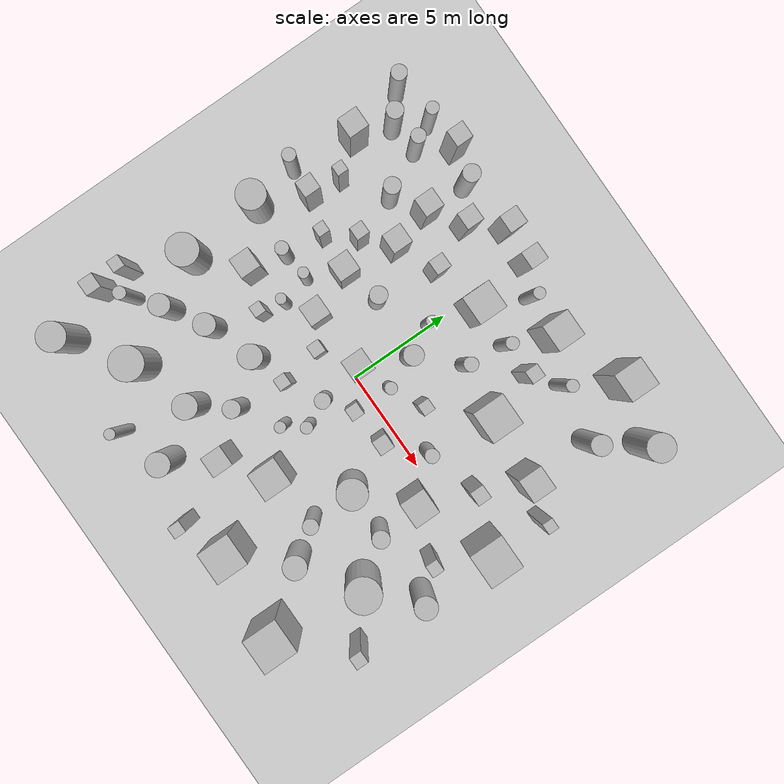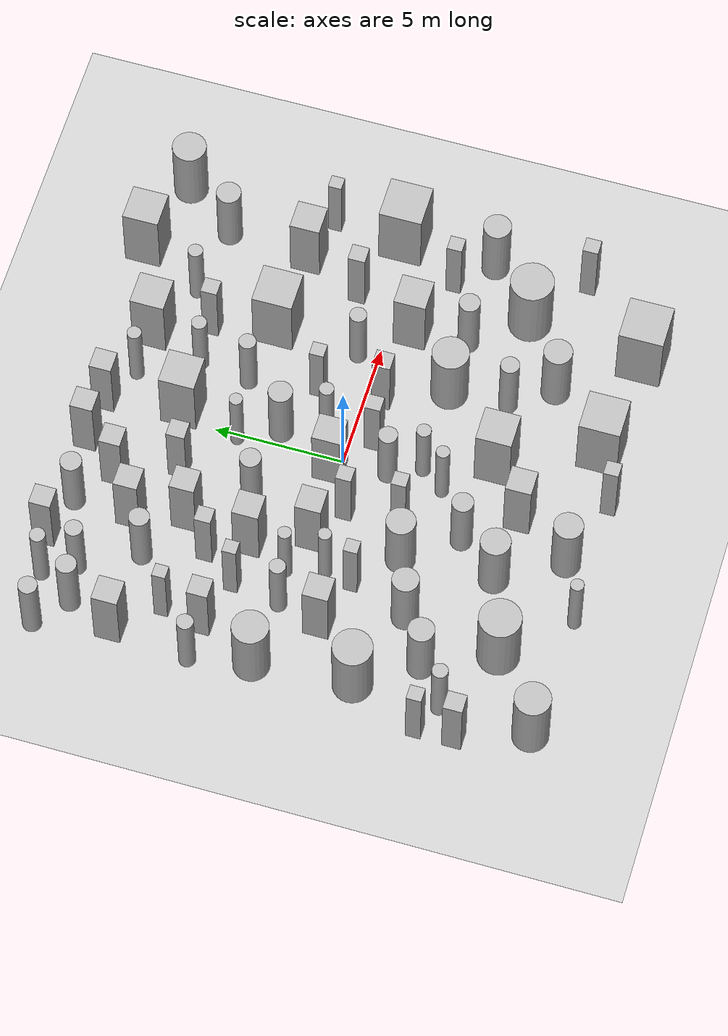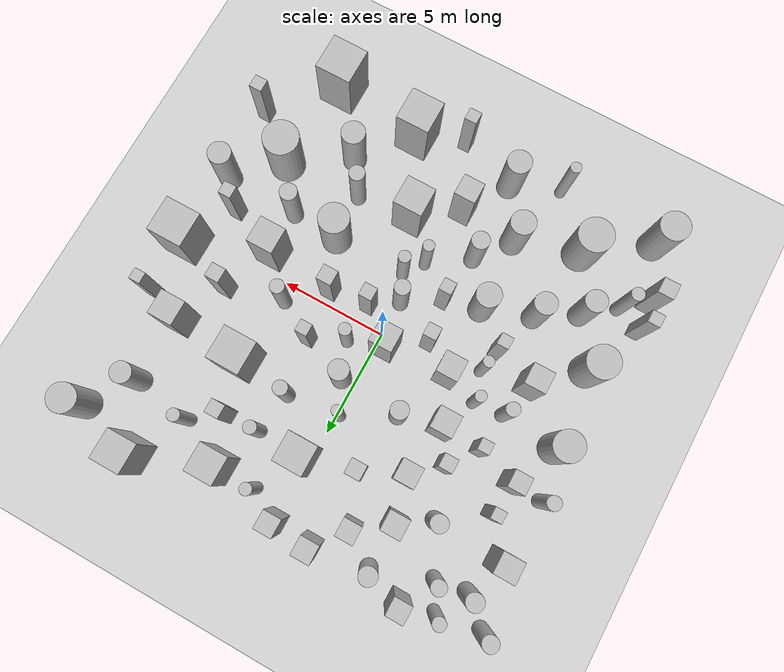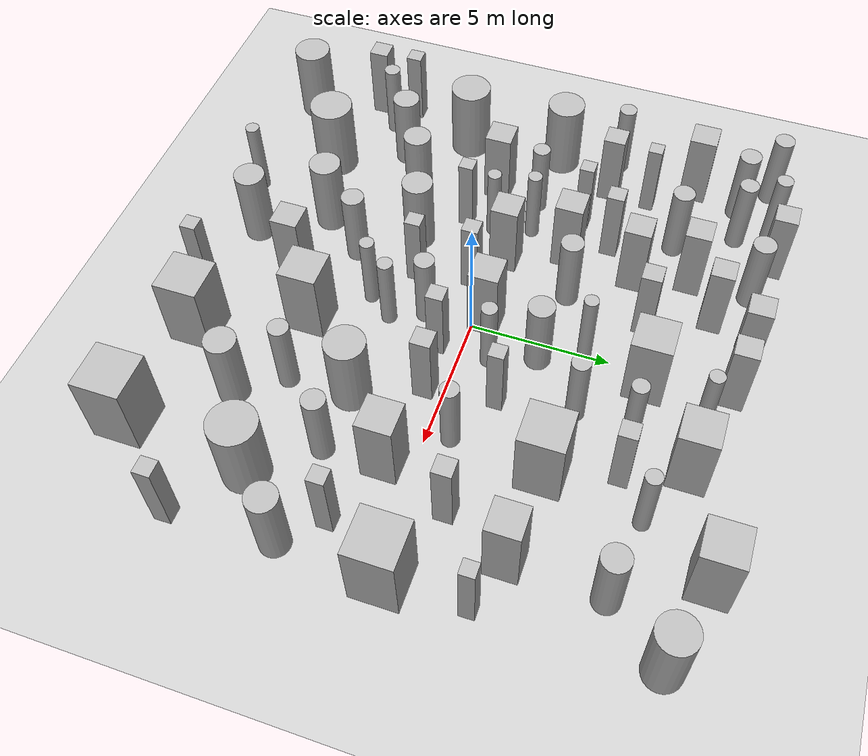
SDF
<sdf version="1.6">
        <world name="default">

        <include>
            <uri>model://ground_plane</uri>
        </include>

        <model name="obstacle_0">
            <pose>-4.238934002201111 2.3401684199355977 1.5 0 0 0</pose>
            <link name="link">
                <collision name="collision">
                    <geometry>
                        <box>
                            <size>1.0087980612089806 1.0087980612089806 3.0</size>
                        </box>
                    </geometry>
                </collision>
                <visual name="visual">
                    <geometry>
                        <box>
                            <size>1.0087980612089806 1.0087980612089806 3.0</size>
                        </box>
                    </geometry>
                </visual>
            </link>
        </model>

        <model name="obstacle_1">
            <pose>6.145270690530111 -0.9166635272459622 1.5 0 0 0</pose>
            <link name="link">
                <collision name="collision">
                    <geometry>
                        <box>
                            <size>1.2335666863201569 1.2335666863201569 3.0</size>
                        </box>
                    </geometry>
                </collision>
                <visual name="visual">
                    <geometry>
                        <box>
                            <size>1.2335666863201569 1.2335666863201569 3.0</size>
                        </box>
                    </geometry>
                </visual>
            </link>
        </model>

        <model name="obstacle_2">
            <pose>-9.017944260368713 0.811907914728538 1.5 0 0 0</pose>
            <link name="link">
                <collision name="collision">
                    <geometry>
                        <cylinder>
                            <radius>0.6912811007779129</radius>
                            <length>3.0</length>
                        </cylinder>
                    </geometry>
                </collision>
                <visual name="visual">
                    <geometry>
                        <cylinder>
                            <radius>0.6912811007779129</radius>
                            <length>3.0</length>
                        </cylinder>
                    </geometry>
                </visual>
            </link>
        </model>

        <model name="obstacle_3">
            <pose>7.834042187993031 -5.026553994182914 1.5 0 0 0</pose>
            <link name="link">
                <collision name="collision">
                    <geometry>
                        <cylinder>
                            <radius>0.8309359316589684</radius>
                            <length>3.0</length>
                        </cylinder>
                    </geometry>
                </collision>
                <visual name="visual">
                    <geometry>
                        <cylinder>
                            <radius>0.8309359316589684</radius>
                            <length>3.0</length>
                        </cylinder>
                    </geometry>
                </visual>
            </link>
        </model>

        <model name="obstacle_4">
            <pose>3.0072740224311474 -0.6460339159340105 1.5 0 0 0</pose>
            <link name="link">
                <collision name="collision">
                    <geometry>
                        <box>
                            <size>0.7022217971248751 0.7022217971248751 3.0</size>
                        </box>
                    </geometry>
                </collision>
                <visual name="visual">
                    <geometry>
                        <box>
                            <size>0.7022217971248751 0.7022217971248751 3.0</size>
                        </box>
                    </geometry>
                </visual>
            </link>
        </model>

        <model name="obstacle_5">
            <pose>3.110087922785773 -9.09727329457494 1.5 0 0 0</pose>
            <link name="link">
                <collision name="collision">
                    <geometry>
                        <box>
                            <size>1.5702536028066296 1.5702536028066296 3.0</size>
                        </box>
                    </geometry>
                </collision>
                <visual name="visual">
                    <geometry>
                        <box>
                            <size>1.5702536028066296 1.5702536028066296 3.0</size>
                        </box>
                    </geometry>
                </visual>
            </link>
        </model>

        <model name="obstacle_6">
            <pose>3.4031378238381738 8.475798860204062 1.5 0 0 0</pose>
            <link name="link">
                <collision name="collision">
                    <geometry>
                        <box>
                            <size>1.3117153214273582 1.3117153214273582 3.0</size>
                        </box>
                    </geometry>
                </collision>
                <visual name="visual">
                    <geometry>
                        <box>
                            <size>1.3117153214273582 1.3117153214273582 3.0</size>
                        </box>
                    </geometry>
                </visual>
            </link>
        </model>

        <model name="obstacle_7">
            <pose>0.5393175169344318 -2.92257386007609 1.5 0 0 0</pose>
            <link name="link">
                <collision name="collision">
                    <geometry>
                        <cylinder>
                            <radius>0.27925159162100394</radius>
                            <length>3.0</length>
                        </cylinder>
                    </geometry>
                </collision>
                <visual name="visual">
                    <geometry>
                        <cylinder>
                            <radius>0.27925159162100394</radius>
                            <length>3.0</length>
                        </cylinder>
                    </geometry>
                </visual>
            </link>
        </model>

        <model name="obstacle_8">
            <pose>-5.584718973849981 -3.9978015471559374 1.5 0 0 0</pose>
            <link name="link">
                <collision name="collision">
                    <geometry>
                        <cylinder>
                            <radius>0.5080285468940801</radius>
                            <length>3.0</length>
                        </cylinder>
                    </geometry>
                </collision>
                <visual name="visual">
                    <geometry>
                        <cylinder>
                            <radius>0.5080285468940801</radius>
                            <length>3.0</length>
                        </cylinder>
                    </geometry>
                </visual>
            </link>
        </model>

        <model name="obstacle_9">
            <pose>0.6159869571884968 2.610706594937618 1.5 0 0 0</pose>
            <link name="link">
                <collision name="collision">
                    <geometry>
                        <cylinder>
                            <radius>0.4619134839479079</radius>
                            <length>3.0</length>
                        </cylinder>
                    </geometry>
                </collision>
                <visual name="visual">
                    <geometry>
                        <cylinder>
                            <radius>0.4619134839479079</radius>
                            <length>3.0</length>
                        </cylinder>
                    </geometry>
                </visual>
            </link>
        </model>

        <model name="obstacle_10">
            <pose>-8.756086165229384 -2.9411977382442984 1.5 0 0 0</pose>
            <link name="link">
                <collision name="collision">
                    <geometry>
                        <cylinder>
                            <radius>0.7487711707294843</radius>
                            <length>3.0</length>
                        </cylinder>
                    </geometry>
                </collision>
                <visual name="visual">
                    <geometry>
                        <cylinder>
                            <radius>0.7487711707294843</radius>
                            <length>3.0</length>
                        </cylinder>
                    </geometry>
                </visual>
            </link>
        </model>

        <model name="obstacle_11">
            <pose>1.4577706665767245 -5.496408602246823 1.5 0 0 0</pose>
            <link name="link">
                <collision name="collision">
                    <geometry>
                        <box>
                            <size>1.3659984909756864 1.3659984909756864 3.0</size>
                        </box>
                    </geometry>
                </collision>
                <visual name="visual">
                    <geometry>
                        <box>
                            <size>1.3659984909756864 1.3659984909756864 3.0</size>
                        </box>
                    </geometry>
                </visual>
            </link>
        </model>

        <model name="obstacle_12">
            <pose>7.346382181564493 -9.570906018380601 1.5 0 0 0</pose>
            <link name="link">
                <collision name="collision">
                    <geometry>
                        <box>
                            <size>1.7083053139215685 1.7083053139215685 3.0</size>
                        </box>
                    </geometry>
                </collision>
                <visual name="visual">
                    <geometry>
                        <box>
                            <size>1.7083053139215685 1.7083053139215685 3.0</size>
                        </box>
                    </geometry>
                </visual>
            </link>
        </model>

        <model name="obstacle_13">
            <pose>-3.8884177708250984 4.878317284280859 1.5 0 0 0</pose>
            <link name="link">
                <collision name="collision">
                    <geometry>
                        <box>
                            <size>0.9458271644123053 0.9458271644123053 3.0</size>
                        </box>
                    </geometry>
                </collision>
                <visual name="visual">
                    <geometry>
                        <box>
                            <size>0.9458271644123053 0.9458271644123053 3.0</size>
                        </box>
                    </geometry>
                </visual>
            </link>
        </model>

        <model name="obstacle_14">
            <pose>-2.8738903435812553 7.9924809726205694 1.5 0 0 0</pose>
            <link name="link">
                <collision name="collision">
                    <geometry>
                        <box>
                            <size>0.8247701336814386 0.8247701336814386 3.0</size>
                        </box>
                    </geometry>
                </collision>
                <visual name="visual">
                    <geometry>
                        <box>
                            <size>0.8247701336814386 0.8247701336814386 3.0</size>
                        </box>
                    </geometry>
                </visual>
            </link>
        </model>

        <model name="obstacle_15">
            <pose>-2.0000379605591734 -0.6655131190047676 1.5 0 0 0</pose>
            <link name="link">
                <collision name="collision">
                    <geometry>
                        <box>
                            <size>0.6038479094198892 0.6038479094198892 3.0</size>
                        </box>
                    </geometry>
                </collision>
                <visual name="visual">
                    <geometry>
                        <box>
                            <size>0.6038479094198892 0.6038479094198892 3.0</size>
                        </box>
                    </geometry>
                </visual>
            </link>
        </model>

        <model name="obstacle_16">
            <pose>-3.169490662841012 -6.691649750913607 1.5 0 0 0</pose>
            <link name="link">
                <collision name="collision">
                    <geometry>
                        <cylinder>
                            <radius>0.5721713468013232</radius>
                            <length>3.0</length>
                        </cylinder>
                    </geometry>
                </collision>
                <visual name="visual">
                    <geometry>
                        <cylinder>
                            <radius>0.5721713468013232</radius>
                            <length>3.0</length>
                        </cylinder>
                    </geometry>
                </visual>
            </link>
        </model>

        <model name="obstacle_17">
            <pose>-2.363137781308775 2.8474199668211746 1.5 0 0 0</pose>
            <link name="link">
                <collision name="collision">
                    <geometry>
                        <cylinder>
                            <radius>0.4059845828894272</radius>
                            <length>3.0</length>
                        </cylinder>
                    </geometry>
                </collision>
                <visual name="visual">
                    <geometry>
                        <cylinder>
                            <radius>0.4059845828894272</radius>
                            <length>3.0</length>
                        </cylinder>
                    </geometry>
                </visual>
            </link>
        </model>

        <model name="obstacle_18">
            <pose>-1.7892718869816129 -9.057475648870636 1.5 0 0 0</pose>
            <link name="link">
                <collision name="collision">
                    <geometry>
                        <cylinder>
                            <radius>0.5564256677063096</radius>
                            <length>3.0</length>
                        </cylinder>
                    </geometry>
                </collision>
                <visual name="visual">
                    <geometry>
                        <cylinder>
                            <radius>0.5564256677063096</radius>
                            <length>3.0</length>
                        </cylinder>
                    </geometry>
                </visual>
            </link>
        </model>

        <model name="obstacle_19">
            <pose>8.178335750158915 3.797907536463324 1.5 0 0 0</pose>
            <link name="link">
                <collision name="collision">
                    <geometry>
                        <box>
                            <size>1.1548980339137929 1.1548980339137929 3.0</size>
                        </box>
                    </geometry>
                </collision>
                <visual name="visual">
                    <geometry>
                        <box>
                            <size>1.1548980339137929 1.1548980339137929 3.0</size>
                        </box>
                    </geometry>
                </visual>
            </link>
        </model>

        <model name="obstacle_20">
            <pose>-6.758674062038812 -1.074526064640363 1.5 0 0 0</pose>
            <link name="link">
                <collision name="collision">
                    <geometry>
                        <box>
                            <size>0.9747178775005267 0.9747178775005267 3.0</size>
                        </box>
                    </geometry>
                </collision>
                <visual name="visual">
                    <geometry>
                        <box>
                            <size>0.9747178775005267 0.9747178775005267 3.0</size>
                        </box>
                    </geometry>
                </visual>
            </link>
        </model>

        <model name="obstacle_21">
            <pose>4.898723037215348 4.026947524572698 1.5 0 0 0</pose>
            <link name="link">
                <collision name="collision">
                    <geometry>
                        <box>
                            <size>1.5508890398871842 1.5508890398871842 3.0</size>
                        </box>
                    </geometry>
                </collision>
                <visual name="visual">
                    <geometry>
                        <box>
                            <size>1.5508890398871842 1.5508890398871842 3.0</size>
                        </box>
                    </geometry>
                </visual>
            </link>
        </model>

        <model name="obstacle_22">
            <pose>-7.621642402214053 9.308360834782235 1.5 0 0 0</pose>
            <link name="link">
                <collision name="collision">
                    <geometry>
                        <cylinder>
                            <radius>0.2959138246513062</radius>
                            <length>3.0</length>
                        </cylinder>
                    </geometry>
                </collision>
                <visual name="visual">
                    <geometry>
                        <cylinder>
                            <radius>0.2959138246513062</radius>
                            <length>3.0</length>
                        </cylinder>
                    </geometry>
                </visual>
            </link>
        </model>

        <model name="obstacle_23">
            <pose>-9.048041047818934 6.164099806317761 1.5 0 0 0</pose>
            <link name="link">
                <collision name="collision">
                    <geometry>
                        <box>
                            <size>0.9823736218656329 0.9823736218656329 3.0</size>
                        </box>
                    </geometry>
                </collision>
                <visual name="visual">
                    <geometry>
                        <box>
                            <size>0.9823736218656329 0.9823736218656329 3.0</size>
                        </box>
                    </geometry>
                </visual>
            </link>
        </model>

        <model name="obstacle_24">
            <pose>0.48835525379342926 6.392519355539697 1.5 0 0 0</pose>
            <link name="link">
                <collision name="collision">
                    <geometry>
                        <box>
                            <size>1.3798679143360395 1.3798679143360395 3.0</size>
                        </box>
                    </geometry>
                </collision>
                <visual name="visual">
                    <geometry>
                        <box>
                            <size>1.3798679143360395 1.3798679143360395 3.0</size>
                        </box>
                    </geometry>
                </visual>
            </link>
        </model>

        <model name="obstacle_25">
            <pose>3.999876859168916 -2.9528975664922648 1.5 0 0 0</pose>
            <link name="link">
                <collision name="collision">
                    <geometry>
                        <cylinder>
                            <radius>0.7056553802129936</radius>
                            <length>3.0</length>
                        </cylinder>
                    </geometry>
                </collision>
                <visual name="visual">
                    <geometry>
                        <cylinder>
                            <radius>0.7056553802129936</radius>
                            <length>3.0</length>
                        </cylinder>
                    </geometry>
                </visual>
            </link>
        </model>

        <model name="obstacle_26">
            <pose>-8.897895715348856 -9.675132015035015 1.5 0 0 0</pose>
            <link name="link">
                <collision name="collision">
                    <geometry>
                        <cylinder>
                            <radius>0.6800447778445939</radius>
                            <length>3.0</length>
                        </cylinder>
                    </geometry>
                </collision>
                <visual name="visual">
                    <geometry>
                        <cylinder>
                            <radius>0.6800447778445939</radius>
                            <length>3.0</length>
                        </cylinder>
                    </geometry>
                </visual>
            </link>
        </model>

        <model name="obstacle_27">
            <pose>1.2200160081743157 1.0119621247316317 1.5 0 0 0</pose>
            <link name="link">
                <collision name="collision">
                    <geometry>
                        <cylinder>
                            <radius>0.282514639175391</radius>
                            <length>3.0</length>
                        </cylinder>
                    </geometry>
                </collision>
                <visual name="visual">
                    <geometry>
                        <cylinder>
                            <radius>0.282514639175391</radius>
                            <length>3.0</length>
                        </cylinder>
                    </geometry>
                </visual>
            </link>
        </model>

        <model name="obstacle_28">
            <pose>-1.6626085759479956 -2.663867658165122 1.5 0 0 0</pose>
            <link name="link">
                <collision name="collision">
                    <geometry>
                        <box>
                            <size>0.5749653239591102 0.5749653239591102 3.0</size>
                        </box>
                    </geometry>
                </collision>
                <visual name="visual">
                    <geometry>
                        <box>
                            <size>0.5749653239591102 0.5749653239591102 3.0</size>
                        </box>
                    </geometry>
                </visual>
            </link>
        </model>

        <model name="obstacle_29">
            <pose>-6.119675531651456 -7.694540272593504 1.5 0 0 0</pose>
            <link name="link">
                <collision name="collision">
                    <geometry>
                        <cylinder>
                            <radius>0.7970464736753787</radius>
                            <length>3.0</length>
                        </cylinder>
                    </geometry>
                </collision>
                <visual name="visual">
                    <geometry>
                        <cylinder>
                            <radius>0.7970464736753787</radius>
                            <length>3.0</length>
                        </cylinder>
                    </geometry>
                </visual>
            </link>
        </model>

        <model name="obstacle_30">
            <pose>-4.8224930908618635 -1.7589879626371818 1.5 0 0 0</pose>
            <link name="link">
                <collision name="collision">
                    <geometry>
                        <box>
                            <size>0.5395689248854418 0.5395689248854418 3.0</size>
                        </box>
                    </geometry>
                </collision>
                <visual name="visual">
                    <geometry>
                        <box>
                            <size>0.5395689248854418 0.5395689248854418 3.0</size>
                        </box>
                    </geometry>
                </visual>
            </link>
        </model>

        <model name="obstacle_31">
            <pose>9.896015477448927 0.47715031232028515 1.5 0 0 0</pose>
            <link name="link">
                <collision name="collision">
                    <geometry>
                        <box>
                            <size>1.6586154198489997 1.6586154198489997 3.0</size>
                        </box>
                    </geometry>
                </collision>
                <visual name="visual">
                    <geometry>
                        <box>
                            <size>1.6586154198489997 1.6586154198489997 3.0</size>
                        </box>
                    </geometry>
                </visual>
            </link>
        </model>

        <model name="obstacle_32">
            <pose>8.369306418920086 7.010070913804384 1.5 0 0 0</pose>
            <link name="link">
                <collision name="collision">
                    <geometry>
                        <cylinder>
                            <radius>0.47489638489931907</radius>
                            <length>3.0</length>
                        </cylinder>
                    </geometry>
                </collision>
                <visual name="visual">
                    <geometry>
                        <cylinder>
                            <radius>0.47489638489931907</radius>
                            <length>3.0</length>
                        </cylinder>
                    </geometry>
                </visual>
            </link>
        </model>

        <model name="obstacle_33">
            <pose>0.06482576601763412 9.294009579444406 1.5 0 0 0</pose>
            <link name="link">
                <collision name="collision">
                    <geometry>
                        <box>
                            <size>0.8416628205242092 0.8416628205242092 3.0</size>
                        </box>
                    </geometry>
                </collision>
                <visual name="visual">
                    <geometry>
                        <box>
                            <size>0.8416628205242092 0.8416628205242092 3.0</size>
                        </box>
                    </geometry>
                </visual>
            </link>
        </model>

        <model name="obstacle_34">
            <pose>6.9144650538570005 9.841627672287554 1.5 0 0 0</pose>
            <link name="link">
                <collision name="collision">
                    <geometry>
                        <box>
                            <size>1.3882798679516937 1.3882798679516937 3.0</size>
                        </box>
                    </geometry>
                </collision>
                <visual name="visual">
                    <geometry>
                        <box>
                            <size>1.3882798679516937 1.3882798679516937 3.0</size>
                        </box>
                    </geometry>
                </visual>
            </link>
        </model>

        <model name="obstacle_35">
            <pose>-0.4606294836279705 -6.918262773111459 1.5 0 0 0</pose>
            <link name="link">
                <collision name="collision">
                    <geometry>
                        <box>
                            <size>0.9922067555000481 0.9922067555000481 3.0</size>
                        </box>
                    </geometry>
                </collision>
                <visual name="visual">
                    <geometry>
                        <box>
                            <size>0.9922067555000481 0.9922067555000481 3.0</size>
                        </box>
                    </geometry>
                </visual>
            </link>
        </model>

        <model name="obstacle_36">
            <pose>4.2291705142799465 6.420156540178233 1.5 0 0 0</pose>
            <link name="link">
                <collision name="collision">
                    <geometry>
                        <box>
                            <size>0.6316317843230939 0.6316317843230939 3.0</size>
                        </box>
                    </geometry>
                </collision>
                <visual name="visual">
                    <geometry>
                        <box>
                            <size>0.6316317843230939 0.6316317843230939 3.0</size>
                        </box>
                    </geometry>
                </visual>
            </link>
        </model>

        <model name="obstacle_37">
            <pose>-0.3860492762994223 0.4143770627543262 1.5 0 0 0</pose>
            <link name="link">
                <collision name="collision">
                    <geometry>
                        <box>
                            <size>1.0807816774041639 1.0807816774041639 3.0</size>
                        </box>
                    </geometry>
                </collision>
                <visual name="visual">
                    <geometry>
                        <box>
                            <size>1.0807816774041639 1.0807816774041639 3.0</size>
                        </box>
                    </geometry>
                </visual>
            </link>
        </model>

        <model name="obstacle_38">
            <pose>8.620760198827465 -1.8543167101960414 1.5 0 0 0</pose>
            <link name="link">
                <collision name="collision">
                    <geometry>
                        <box>
                            <size>0.5861407225004986 0.5861407225004986 3.0</size>
                        </box>
                    </geometry>
                </collision>
                <visual name="visual">
                    <geometry>
                        <box>
                            <size>0.5861407225004986 0.5861407225004986 3.0</size>
                        </box>
                    </geometry>
                </visual>
            </link>
        </model>

        <model name="obstacle_39">
            <pose>-4.377239285824661 6.890563592942701 1.5 0 0 0</pose>
            <link name="link">
                <collision name="collision">
                    <geometry>
                        <box>
                            <size>0.9197718986840724 0.9197718986840724 3.0</size>
                        </box>
                    </geometry>
                </collision>
                <visual name="visual">
                    <geometry>
                        <box>
                            <size>0.9197718986840724 0.9197718986840724 3.0</size>
                        </box>
                    </geometry>
                </visual>
            </link>
        </model>

        <model name="obstacle_40">
            <pose>-9.80193452816938 -7.057811011087476 1.5 0 0 0</pose>
            <link name="link">
                <collision name="collision">
                    <geometry>
                        <box>
                            <size>0.7237780360346685 0.7237780360346685 3.0</size>
                        </box>
                    </geometry>
                </collision>
                <visual name="visual">
                    <geometry>
                        <box>
                            <size>0.7237780360346685 0.7237780360346685 3.0</size>
                        </box>
                    </geometry>
                </visual>
            </link>
        </model>

        <model name="obstacle_41">
            <pose>-7.771650174179456 4.585857764717103 1.5 0 0 0</pose>
            <link name="link">
                <collision name="collision">
                    <geometry>
                        <box>
                            <size>0.5167108467523268 0.5167108467523268 3.0</size>
                        </box>
                    </geometry>
                </collision>
                <visual name="visual">
                    <geometry>
                        <box>
                            <size>0.5167108467523268 0.5167108467523268 3.0</size>
                        </box>
                    </geometry>
                </visual>
            </link>
        </model>

        <model name="obstacle_42">
            <pose>-6.9836851603014 8.138524600085706 1.5 0 0 0</pose>
            <link name="link">
                <collision name="collision">
                    <geometry>
                        <cylinder>
                            <radius>0.34058760315817826</radius>
                            <length>3.0</length>
                        </cylinder>
                    </geometry>
                </collision>
                <visual name="visual">
                    <geometry>
                        <cylinder>
                            <radius>0.34058760315817826</radius>
                            <length>3.0</length>
                        </cylinder>
                    </geometry>
                </visual>
            </link>
        </model>

        <model name="obstacle_43">
            <pose>9.985417119038988 -6.764585476006233 1.5 0 0 0</pose>
            <link name="link">
                <collision name="collision">
                    <geometry>
                        <box>
                            <size>0.5969253716105238 0.5969253716105238 3.0</size>
                        </box>
                    </geometry>
                </collision>
                <visual name="visual">
                    <geometry>
                        <box>
                            <size>0.5969253716105238 0.5969253716105238 3.0</size>
                        </box>
                    </geometry>
                </visual>
            </link>
        </model>

        <model name="obstacle_44">
            <pose>4.1208838282255495 -5.2022096401330264 1.5 0 0 0</pose>
            <link name="link">
                <collision name="collision">
                    <geometry>
                        <cylinder>
                            <radius>0.36009193347507934</radius>
                            <length>3.0</length>
                        </cylinder>
                    </geometry>
                </collision>
                <visual name="visual">
                    <geometry>
                        <cylinder>
                            <radius>0.36009193347507934</radius>
                            <length>3.0</length>
                        </cylinder>
                    </geometry>
                </visual>
            </link>
        </model>

        <model name="obstacle_45">
            <pose>-0.14785550797803815 4.090784782804384 1.5 0 0 0</pose>
            <link name="link">
                <collision name="collision">
                    <geometry>
                        <cylinder>
                            <radius>0.2531381217249855</radius>
                            <length>3.0</length>
                        </cylinder>
                    </geometry>
                </collision>
                <visual name="visual">
                    <geometry>
                        <cylinder>
                            <radius>0.2531381217249855</radius>
                            <length>3.0</length>
                        </cylinder>
                    </geometry>
                </visual>
            </link>
        </model>

        <model name="obstacle_46">
            <pose>-9.678910666382999 8.997330428784913 1.5 0 0 0</pose>
            <link name="link">
                <collision name="collision">
                    <geometry>
                        <cylinder>
                            <radius>0.362171117171875</radius>
                            <length>3.0</length>
                        </cylinder>
                    </geometry>
                </collision>
                <visual name="visual">
                    <geometry>
                        <cylinder>
                            <radius>0.362171117171875</radius>
                            <length>3.0</length>
                        </cylinder>
                    </geometry>
                </visual>
            </link>
        </model>

        <model name="obstacle_47">
            <pose>-6.094148292588784 2.442420619964526 1.5 0 0 0</pose>
            <link name="link">
                <collision name="collision">
                    <geometry>
                        <box>
                            <size>0.5346944205373667 0.5346944205373667 3.0</size>
                        </box>
                    </geometry>
                </collision>
                <visual name="visual">
                    <geometry>
                        <box>
                            <size>0.5346944205373667 0.5346944205373667 3.0</size>
                        </box>
                    </geometry>
                </visual>
            </link>
        </model>

        <model name="obstacle_48">
            <pose>9.914213858505953 9.054127102292252 1.5 0 0 0</pose>
            <link name="link">
                <collision name="collision">
                    <geometry>
                        <cylinder>
                            <radius>0.6557222812279042</radius>
                            <length>3.0</length>
                        </cylinder>
                    </geometry>
                </collision>
                <visual name="visual">
                    <geometry>
                        <cylinder>
                            <radius>0.6557222812279042</radius>
                            <length>3.0</length>
                        </cylinder>
                    </geometry>
                </visual>
            </link>
        </model>

        <model name="obstacle_49">
            <pose>-3.3764061567256682 0.21683452515700807 1.5 0 0 0</pose>
            <link name="link">
                <collision name="collision">
                    <geometry>
                        <box>
                            <size>0.9927370216790601 0.9927370216790601 3.0</size>
                        </box>
                    </geometry>
                </collision>
                <visual name="visual">
                    <geometry>
                        <box>
                            <size>0.9927370216790601 0.9927370216790601 3.0</size>
                        </box>
                    </geometry>
                </visual>
            </link>
        </model>

        <model name="obstacle_50">
            <pose>4.601844883433074 0.7970752207997567 1.5 0 0 0</pose>
            <link name="link">
                <collision name="collision">
                    <geometry>
                        <cylinder>
                            <radius>0.3268638710699123</radius>
                            <length>3.0</length>
                        </cylinder>
                    </geometry>
                </collision>
                <visual name="visual">
                    <geometry>
                        <cylinder>
                            <radius>0.3268638710699123</radius>
                            <length>3.0</length>
                        </cylinder>
                    </geometry>
                </visual>
            </link>
        </model>

        <model name="obstacle_51">
            <pose>-7.952528367623433 3.0360502876566997 1.5 0 0 0</pose>
            <link name="link">
                <collision name="collision">
                    <geometry>
                        <box>
                            <size>0.7895626273553267 0.7895626273553267 3.0</size>
                        </box>
                    </geometry>
                </collision>
                <visual name="visual">
                    <geometry>
                        <box>
                            <size>0.7895626273553267 0.7895626273553267 3.0</size>
                        </box>
                    </geometry>
                </visual>
            </link>
        </model>

        <model name="obstacle_52">
            <pose>-4.988464594915811 0.7486405653123551 1.5 0 0 0</pose>
            <link name="link">
                <collision name="collision">
                    <geometry>
                        <cylinder>
                            <radius>0.2573533472284216</radius>
                            <length>3.0</length>
                        </cylinder>
                    </geometry>
                </collision>
                <visual name="visual">
                    <geometry>
                        <cylinder>
                            <radius>0.2573533472284216</radius>
                            <length>3.0</length>
                        </cylinder>
                    </geometry>
                </visual>
            </link>
        </model>

        <model name="obstacle_53">
            <pose>-5.096687789966676 3.753137621852023 1.5 0 0 0</pose>
            <link name="link">
                <collision name="collision">
                    <geometry>
                        <box>
                            <size>0.626570313841347 0.626570313841347 3.0</size>
                        </box>
                    </geometry>
                </collision>
                <visual name="visual">
                    <geometry>
                        <box>
                            <size>0.626570313841347 0.626570313841347 3.0</size>
                        </box>
                    </geometry>
                </visual>
            </link>
        </model>

        <model name="obstacle_54">
            <pose>7.173594746633508 1.5397271646103299 1.5 0 0 0</pose>
            <link name="link">
                <collision name="collision">
                    <geometry>
                        <box>
                            <size>0.6645214422690804 0.6645214422690804 3.0</size>
                        </box>
                    </geometry>
                </collision>
                <visual name="visual">
                    <geometry>
                        <box>
                            <size>0.6645214422690804 0.6645214422690804 3.0</size>
                        </box>
                    </geometry>
                </visual>
            </link>
        </model>

        <model name="obstacle_55">
            <pose>-9.885926594384664 -5.624149534148111 1.5 0 0 0</pose>
            <link name="link">
                <collision name="collision">
                    <geometry>
                        <box>
                            <size>0.5677287679731353 0.5677287679731353 3.0</size>
                        </box>
                    </geometry>
                </collision>
                <visual name="visual">
                    <geometry>
                        <box>
                            <size>0.5677287679731353 0.5677287679731353 3.0</size>
                        </box>
                    </geometry>
                </visual>
            </link>
        </model>

        <model name="obstacle_56">
            <pose>-4.03528217945879 -9.99484287208438 1.5 0 0 0</pose>
            <link name="link">
                <collision name="collision">
                    <geometry>
                        <cylinder>
                            <radius>0.25428051481978264</radius>
                            <length>3.0</length>
                        </cylinder>
                    </geometry>
                </collision>
                <visual name="visual">
                    <geometry>
                        <cylinder>
                            <radius>0.25428051481978264</radius>
                            <length>3.0</length>
                        </cylinder>
                    </geometry>
                </visual>
            </link>
        </model>

        <model name="obstacle_57">
            <pose>-3.337183344416415 -3.173449474668402 1.5 0 0 0</pose>
            <link name="link">
                <collision name="collision">
                    <geometry>
                        <cylinder>
                            <radius>0.5612728351840388</radius>
                            <length>3.0</length>
                        </cylinder>
                    </geometry>
                </collision>
                <visual name="visual">
                    <geometry>
                        <cylinder>
                            <radius>0.5612728351840388</radius>
                            <length>3.0</length>
                        </cylinder>
                    </geometry>
                </visual>
            </link>
        </model>

        <model name="obstacle_58">
            <pose>-6.033630556739205 9.637501441095242 1.5 0 0 0</pose>
            <link name="link">
                <collision name="collision">
                    <geometry>
                        <box>
                            <size>0.8155261559931428 0.8155261559931428 3.0</size>
                        </box>
                    </geometry>
                </collision>
                <visual name="visual">
                    <geometry>
                        <box>
                            <size>0.8155261559931428 0.8155261559931428 3.0</size>
                        </box>
                    </geometry>
                </visual>
            </link>
        </model>

        <model name="obstacle_59">
            <pose>2.335078378590419 4.407985073086753 1.5 0 0 0</pose>
            <link name="link">
                <collision name="collision">
                    <geometry>
                        <cylinder>
                            <radius>0.33004601818887286</radius>
                            <length>3.0</length>
                        </cylinder>
                    </geometry>
                </collision>
                <visual name="visual">
                    <geometry>
                        <cylinder>
                            <radius>0.33004601818887286</radius>
                            <length>3.0</length>
                        </cylinder>
                    </geometry>
                </visual>
            </link>
        </model>

        <model name="obstacle_60">
            <pose>5.177041149628659 -6.757302660997803 1.5 0 0 0</pose>
            <link name="link">
                <collision name="collision">
                    <geometry>
                        <cylinder>
                            <radius>0.5488387679076501</radius>
                            <length>3.0</length>
                        </cylinder>
                    </geometry>
                </collision>
                <visual name="visual">
                    <geometry>
                        <cylinder>
                            <radius>0.5488387679076501</radius>
                            <length>3.0</length>
                        </cylinder>
                    </geometry>
                </visual>
            </link>
        </model>

        <model name="obstacle_61">
            <pose>-4.3705570139700445 9.098607364951143 1.5 0 0 0</pose>
            <link name="link">
                <collision name="collision">
                    <geometry>
                        <cylinder>
                            <radius>0.40827100175758924</radius>
                            <length>3.0</length>
                        </cylinder>
                    </geometry>
                </collision>
                <visual name="visual">
                    <geometry>
                        <cylinder>
                            <radius>0.40827100175758924</radius>
                            <length>3.0</length>
                        </cylinder>
                    </geometry>
                </visual>
            </link>
        </model>

        <model name="obstacle_62">
            <pose>-7.37821343280925 -5.1045693653181985 1.5 0 0 0</pose>
            <link name="link">
                <collision name="collision">
                    <geometry>
                        <cylinder>
                            <radius>0.4980980216324874</radius>
                            <length>3.0</length>
                        </cylinder>
                    </geometry>
                </collision>
                <visual name="visual">
                    <geometry>
                        <cylinder>
                            <radius>0.4980980216324874</radius>
                            <length>3.0</length>
                        </cylinder>
                    </geometry>
                </visual>
            </link>
        </model>

        <model name="obstacle_63">
            <pose>-5.8726311441572365 6.000759375129377 1.5 0 0 0</pose>
            <link name="link">
                <collision name="collision">
                    <geometry>
                        <cylinder>
                            <radius>0.3897664748409879</radius>
                            <length>3.0</length>
                        </cylinder>
                    </geometry>
                </collision>
                <visual name="visual">
                    <geometry>
                        <cylinder>
                            <radius>0.3897664748409879</radius>
                            <length>3.0</length>
                        </cylinder>
                    </geometry>
                </visual>
            </link>
        </model>

        <model name="obstacle_64">
            <pose>2.600446677377356 6.371294402779149 1.5 0 0 0</pose>
            <link name="link">
                <collision name="collision">
                    <geometry>
                        <cylinder>
                            <radius>0.2954574464455786</radius>
                            <length>3.0</length>
                        </cylinder>
                    </geometry>
                </collision>
                <visual name="visual">
                    <geometry>
                        <cylinder>
                            <radius>0.2954574464455786</radius>
                            <length>3.0</length>
                        </cylinder>
                    </geometry>
                </visual>
            </link>
        </model>

        <model name="obstacle_65">
            <pose>9.805555304609442 -3.1250324270393515 1.5 0 0 0</pose>
            <link name="link">
                <collision name="collision">
                    <geometry>
                        <cylinder>
                            <radius>0.5319538246331648</radius>
                            <length>3.0</length>
                        </cylinder>
                    </geometry>
                </collision>
                <visual name="visual">
                    <geometry>
                        <cylinder>
                            <radius>0.5319538246331648</radius>
                            <length>3.0</length>
                        </cylinder>
                    </geometry>
                </visual>
            </link>
        </model>

        <model name="obstacle_66">
            <pose>-9.480850672791432 3.1145563961223885 1.5 0 0 0</pose>
            <link name="link">
                <collision name="collision">
                    <geometry>
                        <cylinder>
                            <radius>0.3172951371973239</radius>
                            <length>3.0</length>
                        </cylinder>
                    </geometry>
                </collision>
                <visual name="visual">
                    <geometry>
                        <cylinder>
                            <radius>0.3172951371973239</radius>
                            <length>3.0</length>
                        </cylinder>
                    </geometry>
                </visual>
            </link>
        </model>

        <model name="obstacle_68">
            <pose>1.1549652827275825 -0.8486314752223052 1.5 0 0 0</pose>
            <link name="link">
                <collision name="collision">
                    <geometry>
                        <box>
                            <size>0.608642747766415 0.608642747766415 3.0</size>
                        </box>
                    </geometry>
                </collision>
                <visual name="visual">
                    <geometry>
                        <box>
                            <size>0.608642747766415 0.608642747766415 3.0</size>
                        </box>
                    </geometry>
                </visual>
            </link>
        </model>

        <model name="obstacle_69">
            <pose>-1.9447252157539001 -5.108007378613917 1.5 0 0 0</pose>
            <link name="link">
                <collision name="collision">
                    <geometry>
                        <cylinder>
                            <radius>0.40991495829740626</radius>
                            <length>3.0</length>
                        </cylinder>
                    </geometry>
                </collision>
                <visual name="visual">
                    <geometry>
                        <cylinder>
                            <radius>0.40991495829740626</radius>
                            <length>3.0</length>
                        </cylinder>
                    </geometry>
                </visual>
            </link>
        </model>

        <model name="obstacle_71">
            <pose>2.74932077016949 1.7863518953487745 1.5 0 0 0</pose>
            <link name="link">
                <collision name="collision">
                    <geometry>
                        <box>
                            <size>0.5535854197775977 0.5535854197775977 3.0</size>
                        </box>
                    </geometry>
                </collision>
                <visual name="visual">
                    <geometry>
                        <box>
                            <size>0.5535854197775977 0.5535854197775977 3.0</size>
                        </box>
                    </geometry>
                </visual>
            </link>
        </model>

        <model name="obstacle_72">
            <pose>-0.012384905610929309 -1.708492200649431 1.5 0 0 0</pose>
            <link name="link">
                <collision name="collision">
                    <geometry>
                        <cylinder>
                            <radius>0.362662100652529</radius>
                            <length>3.0</length>
                        </cylinder>
                    </geometry>
                </collision>
                <visual name="visual">
                    <geometry>
                        <cylinder>
                            <radius>0.362662100652529</radius>
                            <length>3.0</length>
                        </cylinder>
                    </geometry>
                </visual>
            </link>
        </model>

        <model name="obstacle_73">
            <pose>0.9585412254879273 -9.97892879973456 1.5 0 0 0</pose>
            <link name="link">
                <collision name="collision">
                    <geometry>
                        <box>
                            <size>0.5716695731038818 0.5716695731038818 3.0</size>
                        </box>
                    </geometry>
                </collision>
                <visual name="visual">
                    <geometry>
                        <box>
                            <size>0.5716695731038818 0.5716695731038818 3.0</size>
                        </box>
                    </geometry>
                </visual>
            </link>
        </model>

        <model name="obstacle_77">
            <pose>-1.7282820766999656 9.44287202877629 1.5 0 0 0</pose>
            <link name="link">
                <collision name="collision">
                    <geometry>
                        <box>
                            <size>0.8676565128570232 0.8676565128570232 3.0</size>
                        </box>
                    </geometry>
                </collision>
                <visual name="visual">
                    <geometry>
                        <box>
                            <size>0.8676565128570232 0.8676565128570232 3.0</size>
                        </box>
                    </geometry>
                </visual>
            </link>
        </model>

        <model name="obstacle_79">
            <pose>-1.955906395961403 5.763831916307069 1.5 0 0 0</pose>
            <link name="link">
                <collision name="collision">
                    <geometry>
                        <box>
                            <size>0.7087908331024078 0.7087908331024078 3.0</size>
                        </box>
                    </geometry>
                </collision>
                <visual name="visual">
                    <geometry>
                        <box>
                            <size>0.7087908331024078 0.7087908331024078 3.0</size>
                        </box>
                    </geometry>
                </visual>
            </link>
        </model>

        <model name="obstacle_81">
            <pose>6.287419570474878 -3.0353106653509343 1.5 0 0 0</pose>
            <link name="link">
                <collision name="collision">
                    <geometry>
                        <cylinder>
                            <radius>0.40408862276685587</radius>
                            <length>3.0</length>
                        </cylinder>
                    </geometry>
                </collision>
                <visual name="visual">
                    <geometry>
                        <cylinder>
                            <radius>0.40408862276685587</radius>
                            <length>3.0</length>
                        </cylinder>
                    </geometry>
                </visual>
            </link>
        </model>

        <model name="obstacle_83">
            <pose>-6.379372691633025 0.59170782550488 1.5 0 0 0</pose>
            <link name="link">
                <collision name="collision">
                    <geometry>
                        <cylinder>
                            <radius>0.3147682681223459</radius>
                            <length>3.0</length>
                        </cylinder>
                    </geometry>
                </collision>
                <visual name="visual">
                    <geometry>
                        <cylinder>
                            <radius>0.3147682681223459</radius>
                            <length>3.0</length>
                        </cylinder>
                    </geometry>
                </visual>
            </link>
        </model>

        <model name="obstacle_87">
            <pose>-0.12543075423058703 -3.8394557748921816 1.5 0 0 0</pose>
            <link name="link">
                <collision name="collision">
                    <geometry>
                        <cylinder>
                            <radius>0.2616464952920321</radius>
                            <length>3.0</length>
                        </cylinder>
                    </geometry>
                </collision>
                <visual name="visual">
                    <geometry>
                        <cylinder>
                            <radius>0.2616464952920321</radius>
                            <length>3.0</length>
                        </cylinder>
                    </geometry>
                </visual>
            </link>
        </model>

        <model name="obstacle_91">
            <pose>5.563653625012259 7.4454954883515185 1.5 0 0 0</pose>
            <link name="link">
                <collision name="collision">
                    <geometry>
                        <cylinder>
                            <radius>0.2851520625588251</radius>
                            <length>3.0</length>
                        </cylinder>
                    </geometry>
                </collision>
                <visual name="visual">
                    <geometry>
                        <cylinder>
                            <radius>0.2851520625588251</radius>
                            <length>3.0</length>
                        </cylinder>
                    </geometry>
                </visual>
            </link>
        </model>

        <model name="obstacle_93">
            <pose>9.961051380305815 3.2365327684719993 1.5 0 0 0</pose>
            <link name="link">
                <collision name="collision">
                    <geometry>
                        <box>
                            <size>0.5175063267318369 0.5175063267318369 3.0</size>
                        </box>
                    </geometry>
                </collision>
                <visual name="visual">
                    <geometry>
                        <box>
                            <size>0.5175063267318369 0.5175063267318369 3.0</size>
                        </box>
                    </geometry>
                </visual>
            </link>
        </model>

        <model name="obstacle_94">
            <pose>-8.459967746625118 7.940425687189844 1.5 0 0 0</pose>
            <link name="link">
                <collision name="collision">
                    <geometry>
                        <cylinder>
                            <radius>0.3948937647850279</radius>
                            <length>3.0</length>
                        </cylinder>
                    </geometry>
                </collision>
                <visual name="visual">
                    <geometry>
                        <cylinder>
                            <radius>0.3948937647850279</radius>
                            <length>3.0</length>
                        </cylinder>
                    </geometry>
                </visual>
            </link>
        </model>

        <model name="obstacle_95">
            <pose>-8.769595953731482 -6.2044043005658445 1.5 0 0 0</pose>
            <link name="link">
                <collision name="collision">
                    <geometry>
                        <cylinder>
                            <radius>0.3004307009031273</radius>
                            <length>3.0</length>
                        </cylinder>
                    </geometry>
                </collision>
                <visual name="visual">
                    <geometry>
                        <cylinder>
                            <radius>0.3004307009031273</radius>
                            <length>3.0</length>
                        </cylinder>
                    </geometry>
                </visual>
            </link>
        </model>

        <model name="obstacle_96">
            <pose>-4.621995961100403 -0.6700489583703444 1.5 0 0 0</pose>
            <link name="link">
                <collision name="collision">
                    <geometry>
                        <cylinder>
                            <radius>0.25137626990309725</radius>
                            <length>3.0</length>
                        </cylinder>
                    </geometry>
                </collision>
                <visual name="visual">
                    <geometry>
                        <cylinder>
                            <radius>0.25137626990309725</radius>
                            <length>3.0</length>
                        </cylinder>
                    </geometry>
                </visual>
            </link>
        </model>

        <model name="obstacle_98">
            <pose>1.4974158600727154 8.548518223328088 1.5 0 0 0</pose>
            <link name="link">
                <collision name="collision">
                    <geometry>
                        <cylinder>
                            <radius>0.2722137508372632</radius>
                            <length>3.0</length>
                        </cylinder>
                    </geometry>
                </collision>
                <visual name="visual">
                    <geometry>
                        <cylinder>
                            <radius>0.2722137508372632</radius>
                            <length>3.0</length>
                        </cylinder>
                    </geometry>
                </visual>
            </link>
        </model>

        </world>
    </sdf>
